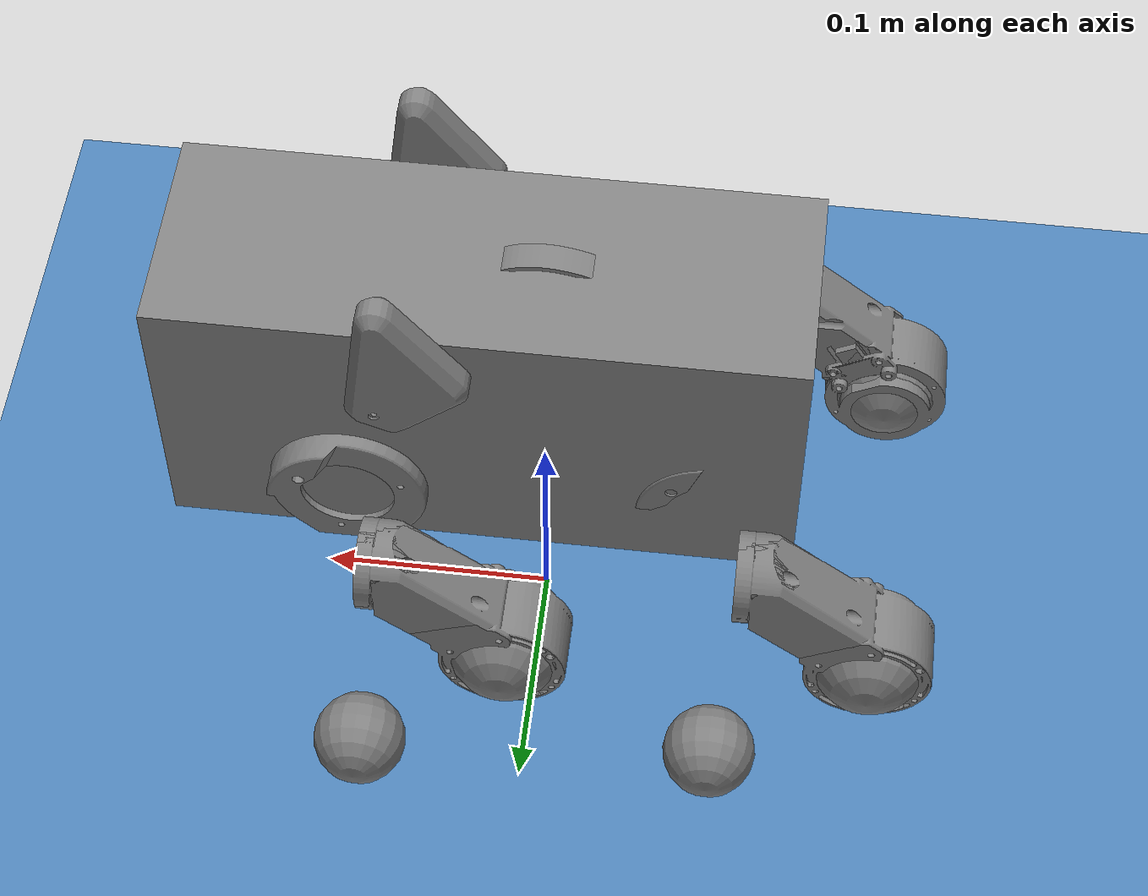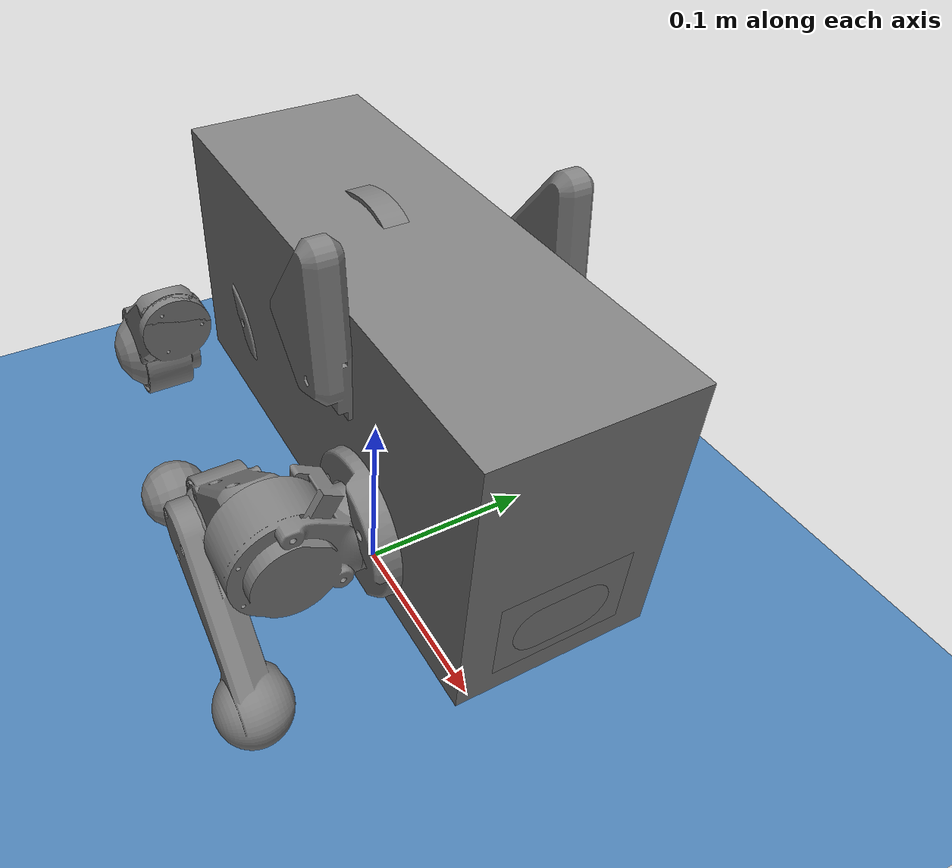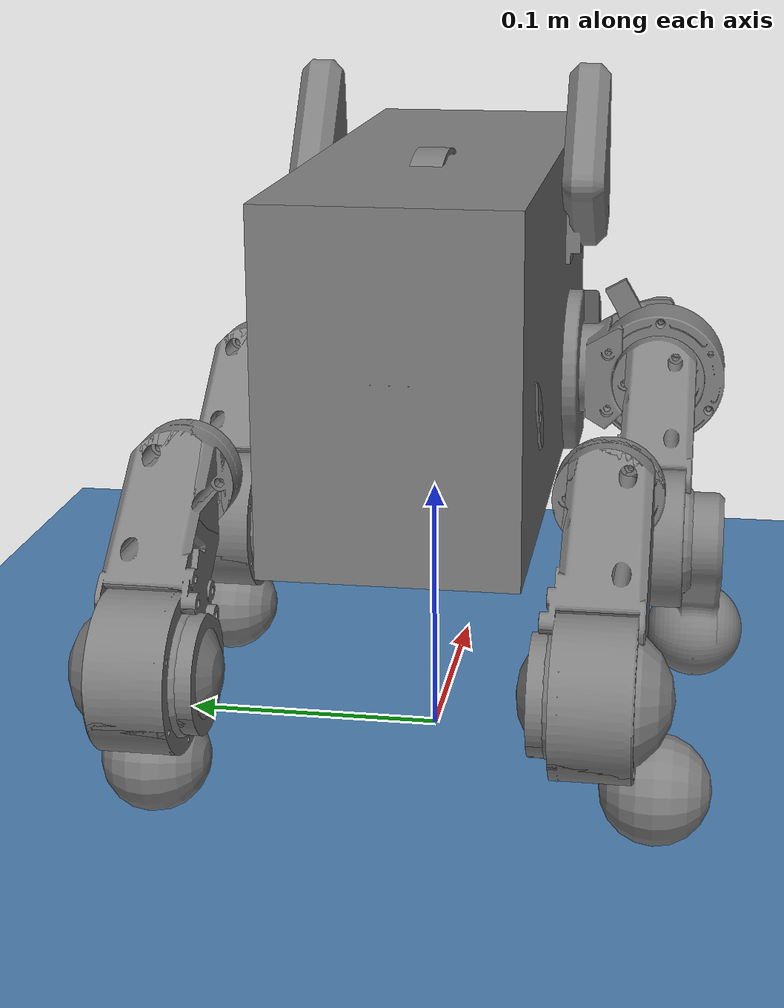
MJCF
<mujoco model="pupper_v3">
  <asset>
    <texture type="skybox" builtin="gradient" rgb1=".3 .5 .7" rgb2="0 0 0" width="512" height="512" />
    <texture name="grid" type="2d" builtin="checker" width="512" height="512" rgb1=".2 .4 .6"
      rgb2=".4 .6 .8" />
    <material name="grid" texture="grid" texrepeat="1 1" texuniform="true" reflectance="0" />
  </asset>
  <sensor>
    <framequat name="body_quat" objtype="site" objname="body_imu_site" />
    <gyro name="body_gyro" site="body_imu_site" />
    <accelerometer name="body_acc" site="body_imu_site" />
  </sensor>
  <actuator>
    <motor gear="1" joint="leg_front_r_1" name="leg_front_r_1" />
    <motor gear="1" joint="leg_front_r_2" name="leg_front_r_2" />
    <motor gear="1" joint="leg_front_r_3" name="leg_front_r_3" />

    <motor gear="1" joint="leg_front_l_1" name="leg_front_l_1" />
    <motor gear="1" joint="leg_front_l_2" name="leg_front_l_2" />
    <motor gear="1" joint="leg_front_l_3" name="leg_front_l_3" />

    <motor gear="1" joint="leg_back_r_1" name="leg_back_r_1" />
    <motor gear="1" joint="leg_back_r_2" name="leg_back_r_2" />
    <motor gear="1" joint="leg_back_r_3" name="leg_back_r_3" />

    <motor gear="1" joint="leg_back_l_1" name="leg_back_l_1" />
    <motor gear="1" joint="leg_back_l_2" name="leg_back_l_2" />
    <motor gear="1" joint="leg_back_l_3" name="leg_back_l_3" />
  </actuator>
  <default>
    <motor forcelimited="true" forcerange="-3 3" ctrlrange="-3 3" ctrllimited="true" />

    <geom condim="3" friction="0.7" solimp="0.015 1 0.015" />
    <joint armature="0.0016" type="hinge" damping="0.01" limited="true" />
  </default>
  <option cone="pyramidal" impratio="1" />
  <compiler angle="radian" meshdir="../meshes/stl/" autolimits="true" />
  <asset>
    <mesh name="BodyV4v70.001" file="BodyV4v70.001.stl" />
    <mesh name="LegAssemblyForFlangedv26.001" file="LegAssemblyForFlangedv26.001.stl" />
    <mesh name="LegAssemblyForFlangedv26.002" file="LegAssemblyForFlangedv26.002.stl" />
    <mesh name="LegAssemblyForFlangedv26.003" file="LegAssemblyForFlangedv26.003.stl" />
    <mesh name="LegAssemblyForFlangedv26.010" file="LegAssemblyForFlangedv26.010.stl" scale="1 -1 1" />
    <mesh name="LegAssemblyForFlangedv26.011" file="LegAssemblyForFlangedv26.011.stl" scale="1 1 -1" />
    <mesh name="LegAssemblyForFlangedv26.012" file="LegAssemblyForFlangedv26.012.stl" scale="1 1 -1" />
    <mesh name="LegAssemblyForFlangedv26.005" file="LegAssemblyForFlangedv26.005.stl" />
    <mesh name="LegAssemblyForFlangedv26.006" file="LegAssemblyForFlangedv26.006.stl" />
    <mesh name="LegAssemblyForFlangedv26.007" file="LegAssemblyForFlangedv26.007.stl" />
    <mesh name="LegAssemblyForFlangedv26.013" file="LegAssemblyForFlangedv26.013.stl" scale="1 -1 1" />
    <mesh name="LegAssemblyForFlangedv26.014" file="LegAssemblyForFlangedv26.014.stl" scale="1 1 -1" />
    <mesh name="LegAssemblyForFlangedv26.015" file="LegAssemblyForFlangedv26.015.stl" scale="1 1 -1" />
  </asset>
  <worldbody>
    <body name="base_link" pos="0 0 0.13" gravcomp="0">
      <inertial pos="0.025 0 0.015" quat="0 0.677807 0 0.73524" mass="1.506"
        diaginertia="0.00854071 0.0085 0.00235929" />
      <joint name="world_to_body" type="free" />
      <geom size="0.04507 0.06379 0.129715" pos="0.02146 0 0.03345"
        quat="0.499998 -0.5 -0.500002 0.5" type="box" />
      <geom quat="0.499998 -0.5 -0.500002 0.5" type="mesh" contype="0" conaffinity="0" group="1"
        density="0" mesh="BodyV4v70.001" />
      <body name="leg_front_r_1" pos="0.075 -0.0835 0" quat="0.707105 0.707108 0 0" gravcomp="0">
        <inertial pos="0 0 0" mass="0.18" diaginertia="7.4e-05 5.8e-05 4.8e-05" />
        <joint name="leg_front_r_1" pos="0 0 0" axis="0 0 1" range="-1.22 2.51" />
        <geom pos="0 0 -0.028" quat="1.32679e-06 0 0 1" type="mesh" contype="0" conaffinity="0"
          group="1" density="0" mesh="LegAssemblyForFlangedv26.001" />
        <body name="leg_front_r_2" pos="0 0 0" quat="0.707107 2.24089e-06 -0.707107 4.83018e-06"
          gravcomp="0">
          <inertial pos="0 -0.0334 0.05419" quat="0.903877 0.427791 0 0" mass="0.186"
            diaginertia="0.000113 9.74951e-05 4.65049e-05" />
          <joint name="leg_front_r_2" pos="0 0 0" axis="0 0 1" range="-0.42 3.14" />
          <geom size="0.025" pos="0 -0.0494 0.0685" quat="0.707105 0 0.707108 0" type="sphere" />
          <geom pos="-0.028 0 0" quat="-2.93388e-06 0.707108 2.26082e-06 0.707106" type="mesh"
            contype="0" conaffinity="0" group="1" density="0" mesh="LegAssemblyForFlangedv26.002" />
          <body name="leg_front_r_3" pos="0 -0.0494 0.0685" quat="0.707105 0 0.707108 0"
            gravcomp="0">
            <inertial pos="0.03866 -0.03585 0.01833" quat="0.270598 0.653281 -0.270598 0.653281"
              mass="0.05" diaginertia="7.7e-05 7.55e-05 5.5e-06" />
            <joint name="leg_front_r_3" pos="0 0 0" axis="0 0 1" range="-2.79 0.71" />
            <geom size="0.01995" pos="0.06231 -0.06216 0.018" quat="1.32679e-06 0 0 1" />
            <geom pos="0.0685 0.0494 -0.028" quat="1.32679e-06 0 0 1" type="mesh" contype="0"
              conaffinity="0" group="1" density="0" mesh="LegAssemblyForFlangedv26.003" />
          </body>
        </body>
      </body>
      <body name="leg_front_l_1" pos="0.075 0.0835 0" quat="0.707105 -0.707108 0 0" gravcomp="0">
        <inertial pos="0 0 0" mass="0.18" diaginertia="7.4e-05 5.8e-05 4.8e-05" />
        <joint name="leg_front_l_1" pos="0 0 0" axis="0 0 1" range="-2.51 1.22" />
        <geom pos="0 0 -0.028" quat="1.32679e-06 0 0 1" type="mesh" contype="0" conaffinity="0"
          group="1" density="0" mesh="LegAssemblyForFlangedv26.010" />
        <body name="leg_front_l_2" pos="0 0 0" quat="-3.89602e-06 0.707107 -1.29867e-06 -0.707107"
          gravcomp="0">
          <inertial pos="0 -0.0334 0.05419" quat="0.903877 0.427791 0 0" mass="0.186"
            diaginertia="0.000113 9.74951e-05 4.65049e-05" />
          <joint name="leg_front_l_2" pos="0 0 0" axis="0 0 1" range="-3.14 0.42" />
          <geom size="0.025" pos="0 -0.0494 0.0685" quat="0.707105 0 0.707108 0" type="sphere" />
          <geom pos="0.028 0 0" quat="-2.93388e-06 0.707108 2.26082e-06 0.707106" type="mesh"
            contype="0" conaffinity="0" group="1" density="0" mesh="LegAssemblyForFlangedv26.011" />
          <body name="leg_front_l_3" pos="0 -0.0494 0.0685"
            quat="9.38184e-07 -0.707108 9.38187e-07 0.707105" gravcomp="0">
            <inertial pos="0.03866 0.03585 0.01833" quat="0.653281 0.270598 -0.653281 0.270598"
              mass="0.05" diaginertia="7.7e-05 7.55e-05 5.5e-06" />
            <joint name="leg_front_l_3" pos="0 0 0" axis="0 0 1" range="-0.71 2.79" />
            <geom size="0.01995" pos="0.06231 0.06216 0.018" quat="1.32679e-06 0 0 1" />
            <geom pos="0.0685 -0.0494 -0.028" quat="1.76029e-12 1.32679e-06 1 1.32679e-06"
              type="mesh" contype="0" conaffinity="0" group="1" density="0"
              mesh="LegAssemblyForFlangedv26.012" />
          </body>
        </body>
      </body>
      <body name="leg_back_r_1" pos="-0.075 -0.0725 0" quat="0.707105 0.707108 0 0" gravcomp="0">
        <inertial pos="0 0 0" mass="0.18" diaginertia="7.4e-05 5.8e-05 4.8e-05" />
        <joint name="leg_back_r_1" pos="0 0 0" axis="0 0 1" range="-1.22 2.51" />
        <geom pos="0 0 -0.028" quat="1.32679e-06 0 0 1" type="mesh" contype="0" conaffinity="0"
          group="1" density="0" mesh="LegAssemblyForFlangedv26.005" />
        <body name="leg_back_r_2" pos="0 0 0" quat="0.707107 2.24089e-06 -0.707107 4.83018e-06"
          gravcomp="0">
          <inertial pos="0 -0.0334 0.05419" quat="0.903877 0.427791 0 0" mass="0.186"
            diaginertia="0.000113 9.74951e-05 4.65049e-05" />
          <joint name="leg_back_r_2" pos="0 0 0" axis="0 0 1" range="-0.42 3.14" />
          <geom size="0.025" pos="0 -0.0494 0.0685" quat="0.707105 0 0.707108 0" type="sphere" />
          <geom pos="-0.028 0 0" quat="-2.93388e-06 0.707108 2.26082e-06 0.707106" type="mesh"
            contype="0" conaffinity="0" group="1" density="0" mesh="LegAssemblyForFlangedv26.006" />
          <body name="leg_back_r_3" pos="0 -0.0494 0.0685" quat="0.707105 0 0.707108 0" gravcomp="0">
            <inertial pos="0.03866 -0.03585 0.01833" quat="0.270598 0.653281 -0.270598 0.653281"
              mass="0.05" diaginertia="7.7e-05 7.55e-05 5.5e-06" />
            <joint name="leg_back_r_3" pos="0 0 0" axis="0 0 1" range="-2.79 0.71" />
            <geom size="0.01995" pos="0.06231 -0.06216 0.018" quat="1.32679e-06 0 0 1" />
            <geom pos="0.0685 0.0494 -0.028" quat="1.32679e-06 0 0 1" type="mesh" contype="0"
              conaffinity="0" group="1" density="0" mesh="LegAssemblyForFlangedv26.007" />
          </body>
        </body>
      </body>
      <body name="leg_back_l_1" pos="-0.075 0.0725 0" quat="0.707105 -0.707108 0 0" gravcomp="0">
        <inertial pos="0 0 0" mass="0.18" diaginertia="7.4e-05 5.8e-05 4.8e-05" />
        <joint name="leg_back_l_1" pos="0 0 0" axis="0 0 1" range="-2.51 1.22" />
        <geom pos="0 0 -0.028" quat="1.32679e-06 0 0 1" type="mesh" contype="0" conaffinity="0"
          group="1" density="0" mesh="LegAssemblyForFlangedv26.013" />
        <body name="leg_back_l_2" pos="0 0 0" quat="-3.89602e-06 0.707107 -1.29867e-06 -0.707107"
          gravcomp="0">
          <inertial pos="0 -0.0334 0.05419" quat="0.903877 0.427791 0 0" mass="0.186"
            diaginertia="0.000113 9.74951e-05 4.65049e-05" />
          <joint name="leg_back_l_2" pos="0 0 0" axis="0 0 1" range="-3.14 0.42" />
          <geom size="0.025" pos="0 -0.0494 0.0685" quat="0.707105 0 0.707108 0" type="sphere" />
          <geom pos="0.028 0 0" quat="-2.93388e-06 0.707108 2.26082e-06 0.707106" type="mesh"
            contype="0" conaffinity="0" group="1" density="0" mesh="LegAssemblyForFlangedv26.014" />
          <body name="leg_back_l_3" pos="0 -0.0494 0.0685"
            quat="9.38184e-07 -0.707108 9.38187e-07 0.707105" gravcomp="0">
            <inertial pos="0.03866 0.03585 0.01833" quat="0.653281 0.270598 -0.653281 0.270598"
              mass="0.05" diaginertia="7.7e-05 7.55e-05 5.5e-06" />
            <joint name="leg_back_l_3" pos="0 0 0" axis="0 0 1" range="-0.71 2.79" />
            <geom size="0.01995" pos="0.06231 0.06216 0.018" quat="1.32679e-06 0 0 1" />
            <geom pos="0.0685 -0.0494 -0.028" quat="1.76029e-12 1.32679e-06 1 1.32679e-06"
              type="mesh" contype="0" conaffinity="0" group="1" density="0"
              mesh="LegAssemblyForFlangedv26.015" />
          </body>
        </body>
      </body>
      <site name="body_imu_site" pos="0.09 0 0.032" />
    </body>
    <geom name="floor" size="0 0 .05" type="plane" material="grid" condim="3" />
    <geom name="floor_visual" size="0 0 .05" pos="0 0 -0.001" type="plane" material="grid"
      condim="3" contype="0" conaffinity="0" group="1" />
    <light name="spotlight" mode="targetbodycom" target="base_link" diffuse="0.9 0.9 0.9"
      specular="0.3 0.3 0.3" pos="0 -4 4" cutoff="100" />
    <camera name="tracking_cam" mode="targetbody" target="base_link" pos="0.5 -0.5 0.5" />
  </worldbody>
</mujoco>
